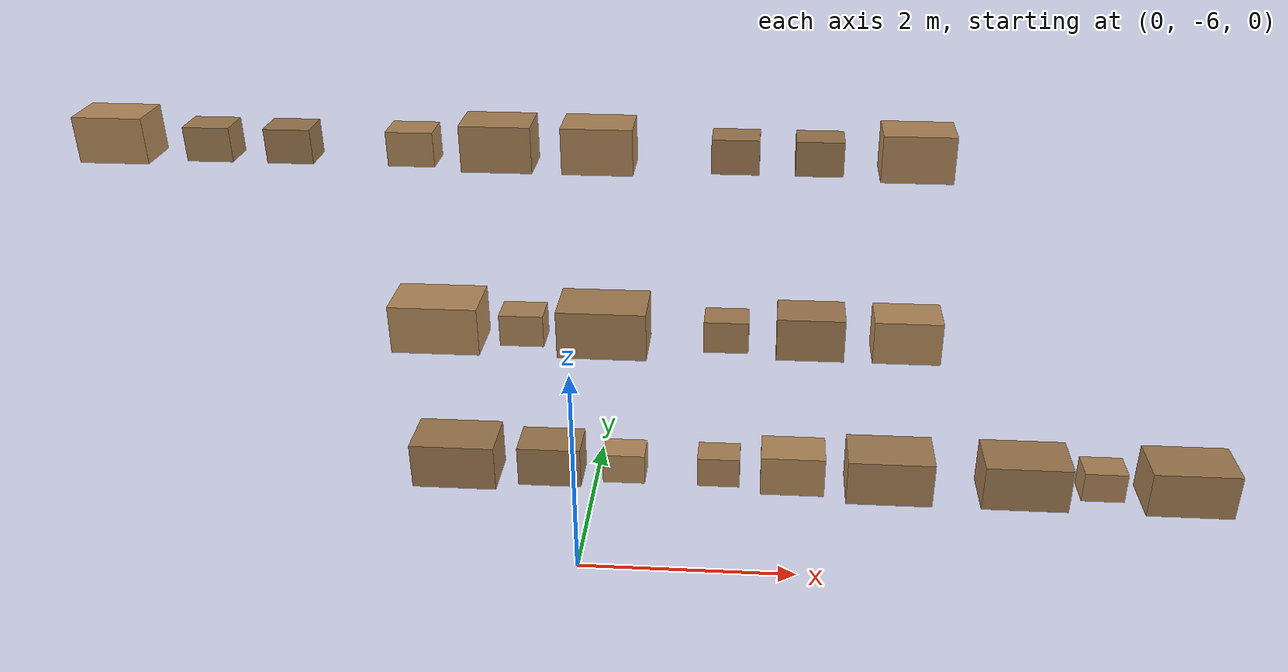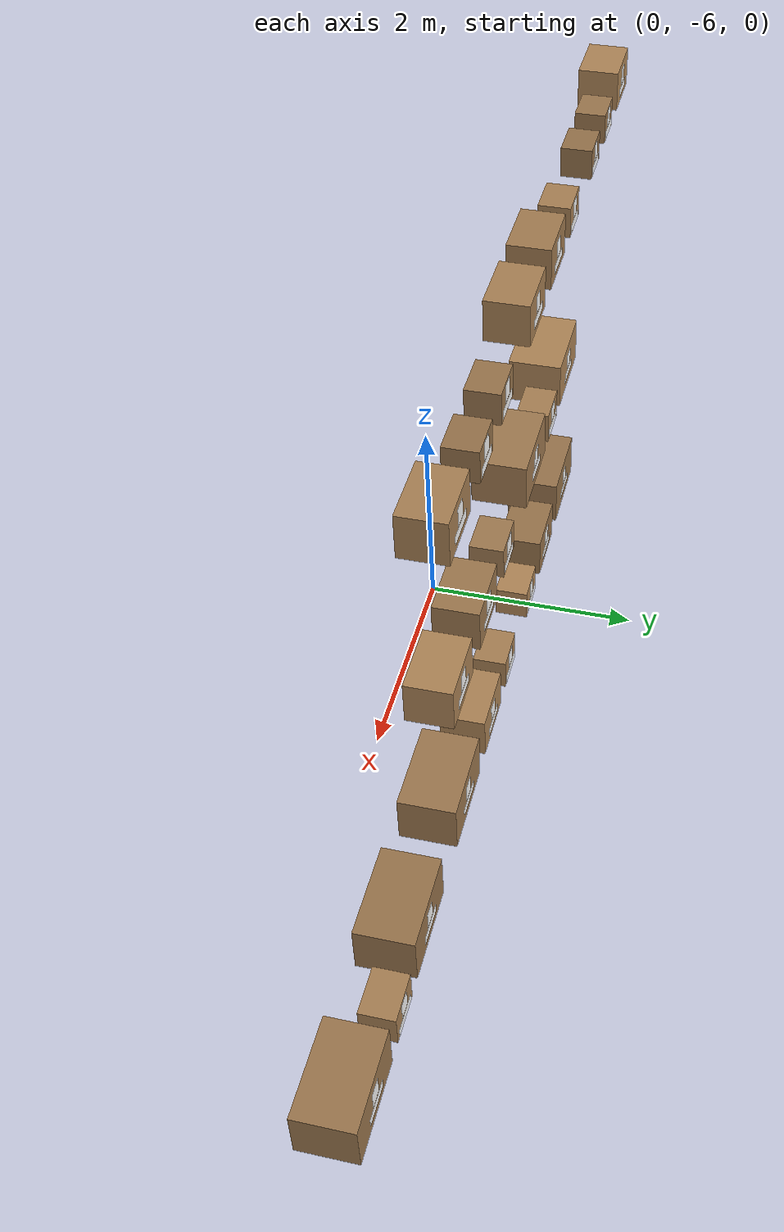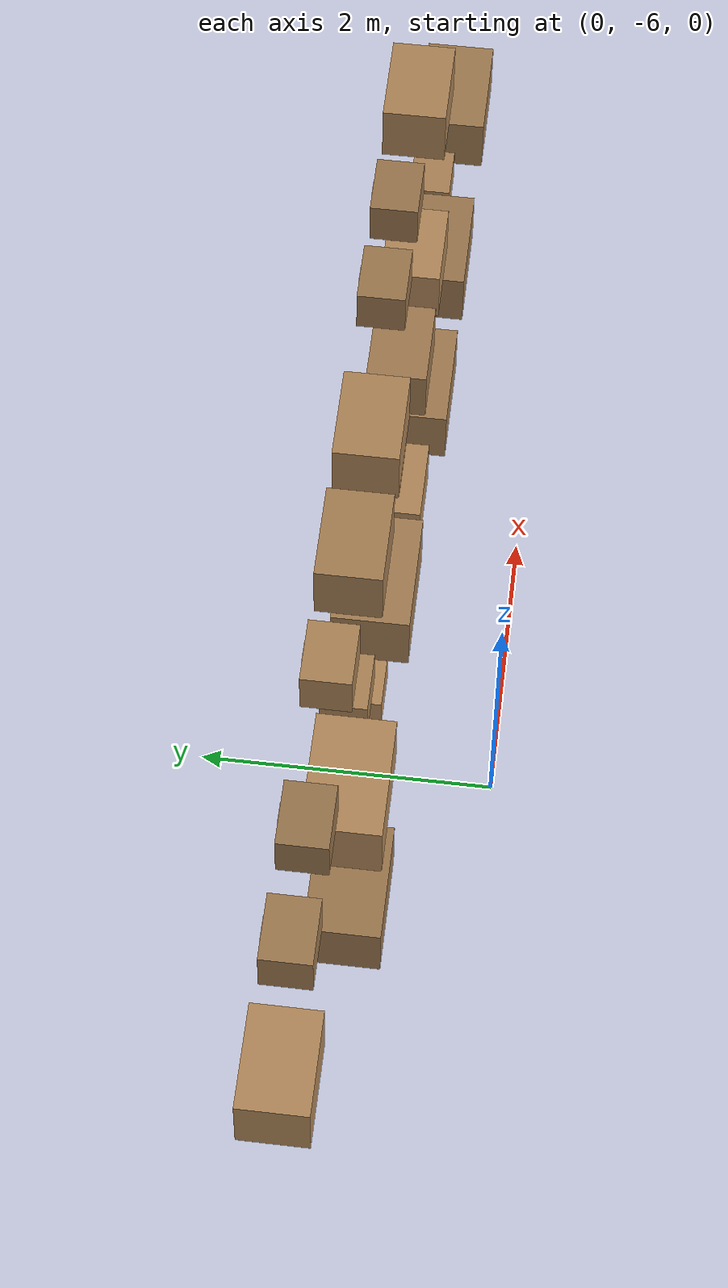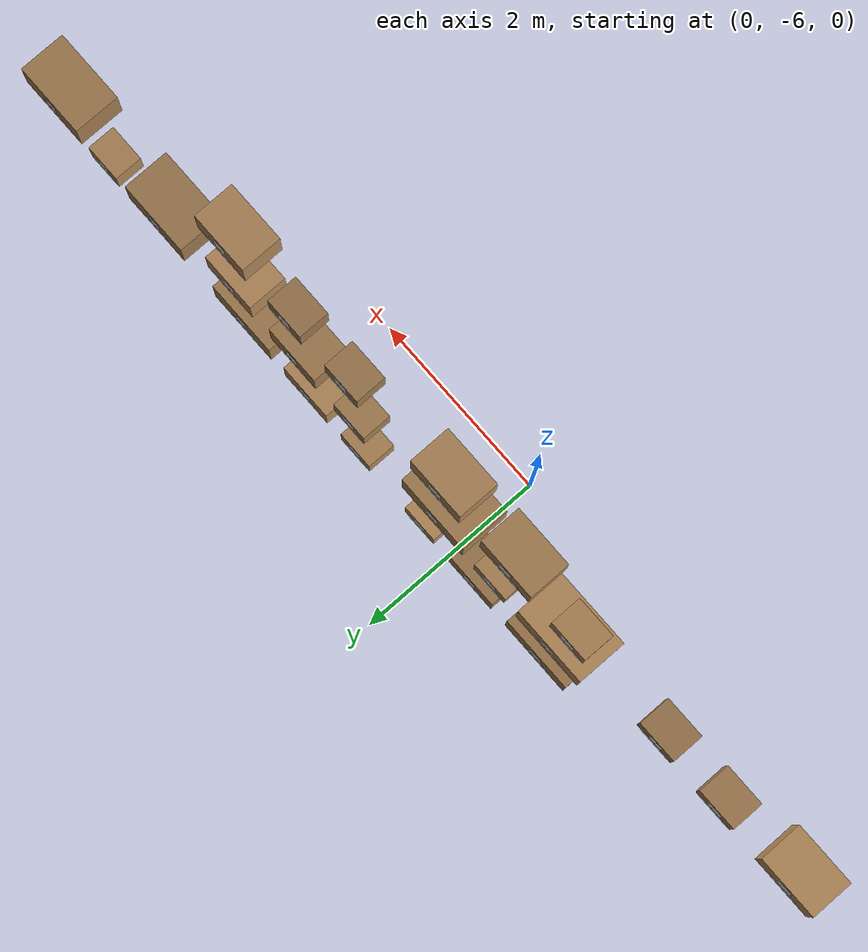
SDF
<sdf version="1.9">
 <world name="warehouse">
  <model name="inventory">
   <static>true</static>
   <link name="box_A_03_3_0">
    <visual name="body">
     <pose>-3.95 -5.12 3.75 0 0 0</pose>
     <geometry><box><size>0.6 0.4 0.4</size></box></geometry>
     <material>
      <ambient>0.350205 0.267804 0.175102 1</ambient>
      <diffuse>0.700409 0.535607 0.350205 1</diffuse>
      <specular>0.05 0.05 0.05 1</specular>
      <pbr><metal><metalness>0.0</metalness><roughness>0.9</roughness></metal></pbr>
     </material>
    </visual>
    <collision name="body_c">
     <pose>-3.95 -5.12 3.75 0 0 0</pose>
     <geometry><box><size>0.6 0.4 0.4</size></box></geometry>
    </collision>
    <visual name="label">
     <pose>-3.95 -4.916 3.8 1.5708 0 3.14159</pose>
     <geometry>
      <mesh><uri>model://warehouse_assets/meshes/label_quad.obj</uri><scale>0.14 0.17 1</scale></mesh>
     </geometry>
     <material>
      <ambient>1 1 1 1</ambient>
      <diffuse>1 1 1 1</diffuse>
      <specular>0 0 0 1</specular>
      <pbr>
       <metal>
        <albedo_map>model://warehouse_assets/materials/textures/box_A0330.png</albedo_map>
        <metalness>0.0</metalness>
        <roughness>1.0</roughness>
       </metal>
      </pbr>
     </material>
    </visual>
    <visual name="placard">
     <pose>-3.95 -4.916 3.66 1.5708 0 3.14159</pose>
     <geometry>
      <mesh><uri>model://warehouse_assets/meshes/label_quad.obj</uri><scale>0.32 0.09 1</scale></mesh>
     </geometry>
     <material>
      <ambient>1 1 1 1</ambient>
      <diffuse>1 1 1 1</diffuse>
      <specular>0 0 0 1</specular>
      <pbr>
       <metal>
        <albedo_map>model://warehouse_assets/materials/textures/placard_A0330.png</albedo_map>
        <metalness>0.0</metalness>
        <roughness>1.0</roughness>
       </metal>
      </pbr>
     </material>
    </visual>
   </link>
   <link name="box_A_03_3_1">
    <visual name="body">
     <pose>-3.15 -5.07 3.7 0 0 0</pose>
     <geometry><box><size>0.4 0.3 0.3</size></box></geometry>
     <material>
      <ambient>0.311586 0.238272 0.155793 1</ambient>
      <diffuse>0.623172 0.476543 0.311586 1</diffuse>
      <specular>0.05 0.05 0.05 1</specular>
      <pbr><metal><metalness>0.0</metalness><roughness>0.9</roughness></metal></pbr>
     </material>
    </visual>
    <collision name="body_c">
     <pose>-3.15 -5.07 3.7 0 0 0</pose>
     <geometry><box><size>0.4 0.3 0.3</size></box></geometry>
    </collision>
    <visual name="label">
     <pose>-3.15 -4.916 3.75 1.5708 0 3.14159</pose>
     <geometry>
      <mesh><uri>model://warehouse_assets/meshes/label_quad.obj</uri><scale>0.14 0.17 1</scale></mesh>
     </geometry>
     <material>
      <ambient>1 1 1 1</ambient>
      <diffuse>1 1 1 1</diffuse>
      <specular>0 0 0 1</specular>
      <pbr>
       <metal>
        <albedo_map>model://warehouse_assets/materials/textures/box_A0331.png</albedo_map>
        <metalness>0.0</metalness>
        <roughness>1.0</roughness>
       </metal>
      </pbr>
     </material>
    </visual>
    <visual name="placard">
     <pose>-3.15 -4.916 3.61 1.5708 0 3.14159</pose>
     <geometry>
      <mesh><uri>model://warehouse_assets/meshes/label_quad.obj</uri><scale>0.32 0.09 1</scale></mesh>
     </geometry>
     <material>
      <ambient>1 1 1 1</ambient>
      <diffuse>1 1 1 1</diffuse>
      <specular>0 0 0 1</specular>
      <pbr>
       <metal>
        <albedo_map>model://warehouse_assets/materials/textures/placard_A0331.png</albedo_map>
        <metalness>0.0</metalness>
        <roughness>1.0</roughness>
       </metal>
      </pbr>
     </material>
    </visual>
   </link>
   <link name="box_A_03_3_2">
    <visual name="body">
     <pose>-2.45 -5.07 3.7 0 0 0</pose>
     <geometry><box><size>0.4 0.3 0.3</size></box></geometry>
     <material>
      <ambient>0.299243 0.228833 0.149621 1</ambient>
      <diffuse>0.598485 0.457665 0.299243 1</diffuse>
      <specular>0.05 0.05 0.05 1</specular>
      <pbr><metal><metalness>0.0</metalness><roughness>0.9</roughness></metal></pbr>
     </material>
    </visual>
    <collision name="body_c">
     <pose>-2.45 -5.07 3.7 0 0 0</pose>
     <geometry><box><size>0.4 0.3 0.3</size></box></geometry>
    </collision>
    <visual name="label">
     <pose>-2.45 -4.916 3.75 1.5708 0 3.14159</pose>
     <geometry>
      <mesh><uri>model://warehouse_assets/meshes/label_quad.obj</uri><scale>0.14 0.17 1</scale></mesh>
     </geometry>
     <material>
      <ambient>1 1 1 1</ambient>
      <diffuse>1 1 1 1</diffuse>
      <specular>0 0 0 1</specular>
      <pbr>
       <metal>
        <albedo_map>model://warehouse_assets/materials/textures/box_A0332.png</albedo_map>
        <metalness>0.0</metalness>
        <roughness>1.0</roughness>
       </metal>
      </pbr>
     </material>
    </visual>
    <visual name="placard">
     <pose>-2.45 -4.916 3.61 1.5708 0 3.14159</pose>
     <geometry>
      <mesh><uri>model://warehouse_assets/meshes/label_quad.obj</uri><scale>0.32 0.09 1</scale></mesh>
     </geometry>
     <material>
      <ambient>1 1 1 1</ambient>
      <diffuse>1 1 1 1</diffuse>
      <specular>0 0 0 1</specular>
      <pbr>
       <metal>
        <albedo_map>model://warehouse_assets/materials/textures/placard_A0332.png</albedo_map>
        <metalness>0.0</metalness>
        <roughness>1.0</roughness>
       </metal>
      </pbr>
     </material>
    </visual>
   </link>
   <link name="box_A_04_1_0">
    <visual name="body">
     <pose>-1.25 -5.17 0.625 0 0 0</pose>
     <geometry><box><size>0.8 0.5 0.45</size></box></geometry>
     <material>
      <ambient>0.306747 0.234571 0.153373 1</ambient>
      <diffuse>0.613494 0.469142 0.306747 1</diffuse>
      <specular>0.05 0.05 0.05 1</specular>
      <pbr><metal><metalness>0.0</metalness><roughness>0.9</roughness></metal></pbr>
     </material>
    </visual>
    <collision name="body_c">
     <pose>-1.25 -5.17 0.625 0 0 0</pose>
     <geometry><box><size>0.8 0.5 0.45</size></box></geometry>
    </collision>
    <visual name="label">
     <pose>-1.25 -4.916 0.675 1.5708 0 3.14159</pose>
     <geometry>
      <mesh><uri>model://warehouse_assets/meshes/label_quad.obj</uri><scale>0.14 0.17 1</scale></mesh>
     </geometry>
     <material>
      <ambient>1 1 1 1</ambient>
      <diffuse>1 1 1 1</diffuse>
      <specular>0 0 0 1</specular>
      <pbr>
       <metal>
        <albedo_map>model://warehouse_assets/materials/textures/box_A0410.png</albedo_map>
        <metalness>0.0</metalness>
        <roughness>1.0</roughness>
       </metal>
      </pbr>
     </material>
    </visual>
    <visual name="placard">
     <pose>-1.25 -4.916 0.535 1.5708 0 3.14159</pose>
     <geometry>
      <mesh><uri>model://warehouse_assets/meshes/label_quad.obj</uri><scale>0.32 0.09 1</scale></mesh>
     </geometry>
     <material>
      <ambient>1 1 1 1</ambient>
      <diffuse>1 1 1 1</diffuse>
      <specular>0 0 0 1</specular>
      <pbr>
       <metal>
        <albedo_map>model://warehouse_assets/materials/textures/placard_A0410.png</albedo_map>
        <metalness>0.0</metalness>
        <roughness>1.0</roughness>
       </metal>
      </pbr>
     </material>
    </visual>
   </link>
   <link name="box_A_04_1_1">
    <visual name="body">
     <pose>-0.35 -5.12 0.6 0 0 0</pose>
     <geometry><box><size>0.6 0.4 0.4</size></box></geometry>
     <material>
      <ambient>0.304688 0.232997 0.152344 1</ambient>
      <diffuse>0.609377 0.465994 0.304688 1</diffuse>
      <specular>0.05 0.05 0.05 1</specular>
      <pbr><metal><metalness>0.0</metalness><roughness>0.9</roughness></metal></pbr>
     </material>
    </visual>
    <collision name="body_c">
     <pose>-0.35 -5.12 0.6 0 0 0</pose>
     <geometry><box><size>0.6 0.4 0.4</size></box></geometry>
    </collision>
    <visual name="label">
     <pose>-0.35 -4.916 0.65 1.5708 0 3.14159</pose>
     <geometry>
      <mesh><uri>model://warehouse_assets/meshes/label_quad.obj</uri><scale>0.14 0.17 1</scale></mesh>
     </geometry>
     <material>
      <ambient>1 1 1 1</ambient>
      <diffuse>1 1 1 1</diffuse>
      <specular>0 0 0 1</specular>
      <pbr>
       <metal>
        <albedo_map>model://warehouse_assets/materials/textures/box_A0411.png</albedo_map>
        <metalness>0.0</metalness>
        <roughness>1.0</roughness>
       </metal>
      </pbr>
     </material>
    </visual>
    <visual name="placard">
     <pose>-0.35 -4.916 0.51 1.5708 0 3.14159</pose>
     <geometry>
      <mesh><uri>model://warehouse_assets/meshes/label_quad.obj</uri><scale>0.32 0.09 1</scale></mesh>
     </geometry>
     <material>
      <ambient>1 1 1 1</ambient>
      <diffuse>1 1 1 1</diffuse>
      <specular>0 0 0 1</specular>
      <pbr>
       <metal>
        <albedo_map>model://warehouse_assets/materials/textures/placard_A0411.png</albedo_map>
        <metalness>0.0</metalness>
        <roughness>1.0</roughness>
       </metal>
      </pbr>
     </material>
    </visual>
   </link>
   <link name="box_A_04_1_2">
    <visual name="body">
     <pose>0.35 -5.07 0.55 0 0 0</pose>
     <geometry><box><size>0.4 0.3 0.3</size></box></geometry>
     <material>
      <ambient>0.3539 0.27063 0.17695 1</ambient>
      <diffuse>0.707801 0.541259 0.3539 1</diffuse>
      <specular>0.05 0.05 0.05 1</specular>
      <pbr><metal><metalness>0.0</metalness><roughness>0.9</roughness></metal></pbr>
     </material>
    </visual>
    <collision name="body_c">
     <pose>0.35 -5.07 0.55 0 0 0</pose>
     <geometry><box><size>0.4 0.3 0.3</size></box></geometry>
    </collision>
    <visual name="label">
     <pose>0.35 -4.916 0.6 1.5708 0 3.14159</pose>
     <geometry>
      <mesh><uri>model://warehouse_assets/meshes/label_quad.obj</uri><scale>0.14 0.17 1</scale></mesh>
     </geometry>
     <material>
      <ambient>1 1 1 1</ambient>
      <diffuse>1 1 1 1</diffuse>
      <specular>0 0 0 1</specular>
      <pbr>
       <metal>
        <albedo_map>model://warehouse_assets/materials/textures/box_A0412.png</albedo_map>
        <metalness>0.0</metalness>
        <roughness>1.0</roughness>
       </metal>
      </pbr>
     </material>
    </visual>
    <visual name="placard">
     <pose>0.35 -4.916 0.46 1.5708 0 3.14159</pose>
     <geometry>
      <mesh><uri>model://warehouse_assets/meshes/label_quad.obj</uri><scale>0.32 0.09 1</scale></mesh>
     </geometry>
     <material>
      <ambient>1 1 1 1</ambient>
      <diffuse>1 1 1 1</diffuse>
      <specular>0 0 0 1</specular>
      <pbr>
       <metal>
        <albedo_map>model://warehouse_assets/materials/textures/placard_A0412.png</albedo_map>
        <metalness>0.0</metalness>
        <roughness>1.0</roughness>
       </metal>
      </pbr>
     </material>
    </visual>
   </link>
   <link name="box_A_04_2_0">
    <visual name="body">
     <pose>-1.3 -5.17 2.075 0 0 0</pose>
     <geometry><box><size>0.8 0.5 0.45</size></box></geometry>
     <material>
      <ambient>0.349316 0.267124 0.174658 1</ambient>
      <diffuse>0.698632 0.534248 0.349316 1</diffuse>
      <specular>0.05 0.05 0.05 1</specular>
      <pbr><metal><metalness>0.0</metalness><roughness>0.9</roughness></metal></pbr>
     </material>
    </visual>
    <collision name="body_c">
     <pose>-1.3 -5.17 2.075 0 0 0</pose>
     <geometry><box><size>0.8 0.5 0.45</size></box></geometry>
    </collision>
    <visual name="label">
     <pose>-1.3 -4.916 2.125 1.5708 0 3.14159</pose>
     <geometry>
      <mesh><uri>model://warehouse_assets/meshes/label_quad.obj</uri><scale>0.14 0.17 1</scale></mesh>
     </geometry>
     <material>
      <ambient>1 1 1 1</ambient>
      <diffuse>1 1 1 1</diffuse>
      <specular>0 0 0 1</specular>
      <pbr>
       <metal>
        <albedo_map>model://warehouse_assets/materials/textures/box_A0420.png</albedo_map>
        <metalness>0.0</metalness>
        <roughness>1.0</roughness>
       </metal>
      </pbr>
     </material>
    </visual>
    <visual name="placard">
     <pose>-1.3 -4.916 1.985 1.5708 0 3.14159</pose>
     <geometry>
      <mesh><uri>model://warehouse_assets/meshes/label_quad.obj</uri><scale>0.32 0.09 1</scale></mesh>
     </geometry>
     <material>
      <ambient>1 1 1 1</ambient>
      <diffuse>1 1 1 1</diffuse>
      <specular>0 0 0 1</specular>
      <pbr>
       <metal>
        <albedo_map>model://warehouse_assets/materials/textures/placard_A0420.png</albedo_map>
        <metalness>0.0</metalness>
        <roughness>1.0</roughness>
       </metal>
      </pbr>
     </material>
    </visual>
   </link>
   <link name="box_A_04_2_1">
    <visual name="body">
     <pose>-0.55 -5.07 2 0 0 0</pose>
     <geometry><box><size>0.4 0.3 0.3</size></box></geometry>
     <material>
      <ambient>0.336579 0.257384 0.168289 1</ambient>
      <diffuse>0.673157 0.514767 0.336579 1</diffuse>
      <specular>0.05 0.05 0.05 1</specular>
      <pbr><metal><metalness>0.0</metalness><roughness>0.9</roughness></metal></pbr>
     </material>
    </visual>
    <collision name="body_c">
     <pose>-0.55 -5.07 2 0 0 0</pose>
     <geometry><box><size>0.4 0.3 0.3</size></box></geometry>
    </collision>
    <visual name="label">
     <pose>-0.55 -4.916 2.05 1.5708 0 3.14159</pose>
     <geometry>
      <mesh><uri>model://warehouse_assets/meshes/label_quad.obj</uri><scale>0.14 0.17 1</scale></mesh>
     </geometry>
     <material>
      <ambient>1 1 1 1</ambient>
      <diffuse>1 1 1 1</diffuse>
      <specular>0 0 0 1</specular>
      <pbr>
       <metal>
        <albedo_map>model://warehouse_assets/materials/textures/box_A0421.png</albedo_map>
        <metalness>0.0</metalness>
        <roughness>1.0</roughness>
       </metal>
      </pbr>
     </material>
    </visual>
    <visual name="placard">
     <pose>-0.55 -4.916 1.91 1.5708 0 3.14159</pose>
     <geometry>
      <mesh><uri>model://warehouse_assets/meshes/label_quad.obj</uri><scale>0.32 0.09 1</scale></mesh>
     </geometry>
     <material>
      <ambient>1 1 1 1</ambient>
      <diffuse>1 1 1 1</diffuse>
      <specular>0 0 0 1</specular>
      <pbr>
       <metal>
        <albedo_map>model://warehouse_assets/materials/textures/placard_A0421.png</albedo_map>
        <metalness>0.0</metalness>
        <roughness>1.0</roughness>
       </metal>
      </pbr>
     </material>
    </visual>
   </link>
   <link name="box_A_04_2_2">
    <visual name="body">
     <pose>0.2 -5.17 2.075 0 0 0</pose>
     <geometry><box><size>0.8 0.5 0.45</size></box></geometry>
     <material>
      <ambient>0.321122 0.245564 0.160561 1</ambient>
      <diffuse>0.642245 0.491128 0.321122 1</diffuse>
      <specular>0.05 0.05 0.05 1</specular>
      <pbr><metal><metalness>0.0</metalness><roughness>0.9</roughness></metal></pbr>
     </material>
    </visual>
    <collision name="body_c">
     <pose>0.2 -5.17 2.075 0 0 0</pose>
     <geometry><box><size>0.8 0.5 0.45</size></box></geometry>
    </collision>
    <visual name="label">
     <pose>0.2 -4.916 2.125 1.5708 0 3.14159</pose>
     <geometry>
      <mesh><uri>model://warehouse_assets/meshes/label_quad.obj</uri><scale>0.14 0.17 1</scale></mesh>
     </geometry>
     <material>
      <ambient>1 1 1 1</ambient>
      <diffuse>1 1 1 1</diffuse>
      <specular>0 0 0 1</specular>
      <pbr>
       <metal>
        <albedo_map>model://warehouse_assets/materials/textures/box_A0422.png</albedo_map>
        <metalness>0.0</metalness>
        <roughness>1.0</roughness>
       </metal>
      </pbr>
     </material>
    </visual>
    <visual name="placard">
     <pose>0.2 -4.916 1.985 1.5708 0 3.14159</pose>
     <geometry>
      <mesh><uri>model://warehouse_assets/meshes/label_quad.obj</uri><scale>0.32 0.09 1</scale></mesh>
     </geometry>
     <material>
      <ambient>1 1 1 1</ambient>
      <diffuse>1 1 1 1</diffuse>
      <specular>0 0 0 1</specular>
      <pbr>
       <metal>
        <albedo_map>model://warehouse_assets/materials/textures/placard_A0422.png</albedo_map>
        <metalness>0.0</metalness>
        <roughness>1.0</roughness>
       </metal>
      </pbr>
     </material>
    </visual>
   </link>
   <link name="box_A_04_3_0">
    <visual name="body">
     <pose>-1.4 -5.07 3.7 0 0 0</pose>
     <geometry><box><size>0.4 0.3 0.3</size></box></geometry>
     <material>
      <ambient>0.336707 0.257482 0.168354 1</ambient>
      <diffuse>0.673415 0.514964 0.336707 1</diffuse>
      <specular>0.05 0.05 0.05 1</specular>
      <pbr><metal><metalness>0.0</metalness><roughness>0.9</roughness></metal></pbr>
     </material>
    </visual>
    <collision name="body_c">
     <pose>-1.4 -5.07 3.7 0 0 0</pose>
     <geometry><box><size>0.4 0.3 0.3</size></box></geometry>
    </collision>
    <visual name="label">
     <pose>-1.4 -4.916 3.75 1.5708 0 3.14159</pose>
     <geometry>
      <mesh><uri>model://warehouse_assets/meshes/label_quad.obj</uri><scale>0.14 0.17 1</scale></mesh>
     </geometry>
     <material>
      <ambient>1 1 1 1</ambient>
      <diffuse>1 1 1 1</diffuse>
      <specular>0 0 0 1</specular>
      <pbr>
       <metal>
        <albedo_map>model://warehouse_assets/materials/textures/box_A0430.png</albedo_map>
        <metalness>0.0</metalness>
        <roughness>1.0</roughness>
       </metal>
      </pbr>
     </material>
    </visual>
    <visual name="placard">
     <pose>-1.4 -4.916 3.61 1.5708 0 3.14159</pose>
     <geometry>
      <mesh><uri>model://warehouse_assets/meshes/label_quad.obj</uri><scale>0.32 0.09 1</scale></mesh>
     </geometry>
     <material>
      <ambient>1 1 1 1</ambient>
      <diffuse>1 1 1 1</diffuse>
      <specular>0 0 0 1</specular>
      <pbr>
       <metal>
        <albedo_map>model://warehouse_assets/materials/textures/placard_A0430.png</albedo_map>
        <metalness>0.0</metalness>
        <roughness>1.0</roughness>
       </metal>
      </pbr>
     </material>
    </visual>
   </link>
   <link name="box_A_04_3_1">
    <visual name="body">
     <pose>-0.65 -5.12 3.75 0 0 0</pose>
     <geometry><box><size>0.6 0.4 0.4</size></box></geometry>
     <material>
      <ambient>0.324996 0.248526 0.162498 1</ambient>
      <diffuse>0.649991 0.497052 0.324996 1</diffuse>
      <specular>0.05 0.05 0.05 1</specular>
      <pbr><metal><metalness>0.0</metalness><roughness>0.9</roughness></metal></pbr>
     </material>
    </visual>
    <collision name="body_c">
     <pose>-0.65 -5.12 3.75 0 0 0</pose>
     <geometry><box><size>0.6 0.4 0.4</size></box></geometry>
    </collision>
    <visual name="label">
     <pose>-0.65 -4.916 3.8 1.5708 0 3.14159</pose>
     <geometry>
      <mesh><uri>model://warehouse_assets/meshes/label_quad.obj</uri><scale>0.14 0.17 1</scale></mesh>
     </geometry>
     <material>
      <ambient>1 1 1 1</ambient>
      <diffuse>1 1 1 1</diffuse>
      <specular>0 0 0 1</specular>
      <pbr>
       <metal>
        <albedo_map>model://warehouse_assets/materials/textures/box_A0431.png</albedo_map>
        <metalness>0.0</metalness>
        <roughness>1.0</roughness>
       </metal>
      </pbr>
     </material>
    </visual>
    <visual name="placard">
     <pose>-0.65 -4.916 3.66 1.5708 0 3.14159</pose>
     <geometry>
      <mesh><uri>model://warehouse_assets/meshes/label_quad.obj</uri><scale>0.32 0.09 1</scale></mesh>
     </geometry>
     <material>
      <ambient>1 1 1 1</ambient>
      <diffuse>1 1 1 1</diffuse>
      <specular>0 0 0 1</specular>
      <pbr>
       <metal>
        <albedo_map>model://warehouse_assets/materials/textures/placard_A0431.png</albedo_map>
        <metalness>0.0</metalness>
        <roughness>1.0</roughness>
       </metal>
      </pbr>
     </material>
    </visual>
   </link>
   <link name="box_A_04_3_2">
    <visual name="body">
     <pose>0.2 -5.12 3.75 0 0 0</pose>
     <geometry><box><size>0.6 0.4 0.4</size></box></geometry>
     <material>
      <ambient>0.33769 0.258233 0.168845 1</ambient>
      <diffuse>0.675379 0.516466 0.33769 1</diffuse>
      <specular>0.05 0.05 0.05 1</specular>
      <pbr><metal><metalness>0.0</metalness><roughness>0.9</roughness></metal></pbr>
     </material>
    </visual>
    <collision name="body_c">
     <pose>0.2 -5.12 3.75 0 0 0</pose>
     <geometry><box><size>0.6 0.4 0.4</size></box></geometry>
    </collision>
    <visual name="label">
     <pose>0.2 -4.916 3.8 1.5708 0 3.14159</pose>
     <geometry>
      <mesh><uri>model://warehouse_assets/meshes/label_quad.obj</uri><scale>0.14 0.17 1</scale></mesh>
     </geometry>
     <material>
      <ambient>1 1 1 1</ambient>
      <diffuse>1 1 1 1</diffuse>
      <specular>0 0 0 1</specular>
      <pbr>
       <metal>
        <albedo_map>model://warehouse_assets/materials/textures/box_A0432.png</albedo_map>
        <metalness>0.0</metalness>
        <roughness>1.0</roughness>
       </metal>
      </pbr>
     </material>
    </visual>
    <visual name="placard">
     <pose>0.2 -4.916 3.66 1.5708 0 3.14159</pose>
     <geometry>
      <mesh><uri>model://warehouse_assets/meshes/label_quad.obj</uri><scale>0.32 0.09 1</scale></mesh>
     </geometry>
     <material>
      <ambient>1 1 1 1</ambient>
      <diffuse>1 1 1 1</diffuse>
      <specular>0 0 0 1</specular>
      <pbr>
       <metal>
        <albedo_map>model://warehouse_assets/materials/textures/placard_A0432.png</albedo_map>
        <metalness>0.0</metalness>
        <roughness>1.0</roughness>
       </metal>
      </pbr>
     </material>
    </visual>
   </link>
   <link name="box_A_05_1_0">
    <visual name="body">
     <pose>1.25 -5.07 0.55 0 0 0</pose>
     <geometry><box><size>0.4 0.3 0.3</size></box></geometry>
     <material>
      <ambient>0.336385 0.257236 0.168193 1</ambient>
      <diffuse>0.672771 0.514472 0.336385 1</diffuse>
      <specular>0.05 0.05 0.05 1</specular>
      <pbr><metal><metalness>0.0</metalness><roughness>0.9</roughness></metal></pbr>
     </material>
    </visual>
    <collision name="body_c">
     <pose>1.25 -5.07 0.55 0 0 0</pose>
     <geometry><box><size>0.4 0.3 0.3</size></box></geometry>
    </collision>
    <visual name="label">
     <pose>1.25 -4.916 0.6 1.5708 0 3.14159</pose>
     <geometry>
      <mesh><uri>model://warehouse_assets/meshes/label_quad.obj</uri><scale>0.14 0.17 1</scale></mesh>
     </geometry>
     <material>
      <ambient>1 1 1 1</ambient>
      <diffuse>1 1 1 1</diffuse>
      <specular>0 0 0 1</specular>
      <pbr>
       <metal>
        <albedo_map>model://warehouse_assets/materials/textures/box_A0510.png</albedo_map>
        <metalness>0.0</metalness>
        <roughness>1.0</roughness>
       </metal>
      </pbr>
     </material>
    </visual>
    <visual name="placard">
     <pose>1.25 -4.916 0.46 1.5708 0 3.14159</pose>
     <geometry>
      <mesh><uri>model://warehouse_assets/meshes/label_quad.obj</uri><scale>0.32 0.09 1</scale></mesh>
     </geometry>
     <material>
      <ambient>1 1 1 1</ambient>
      <diffuse>1 1 1 1</diffuse>
      <specular>0 0 0 1</specular>
      <pbr>
       <metal>
        <albedo_map>model://warehouse_assets/materials/textures/placard_A0510.png</albedo_map>
        <metalness>0.0</metalness>
        <roughness>1.0</roughness>
       </metal>
      </pbr>
     </material>
    </visual>
   </link>
   <link name="box_A_05_1_1">
    <visual name="body">
     <pose>1.95 -5.12 0.6 0 0 0</pose>
     <geometry><box><size>0.6 0.4 0.4</size></box></geometry>
     <material>
      <ambient>0.347353 0.265623 0.173676 1</ambient>
      <diffuse>0.694706 0.531246 0.347353 1</diffuse>
      <specular>0.05 0.05 0.05 1</specular>
      <pbr><metal><metalness>0.0</metalness><roughness>0.9</roughness></metal></pbr>
     </material>
    </visual>
    <collision name="body_c">
     <pose>1.95 -5.12 0.6 0 0 0</pose>
     <geometry><box><size>0.6 0.4 0.4</size></box></geometry>
    </collision>
    <visual name="label">
     <pose>1.95 -4.916 0.65 1.5708 0 3.14159</pose>
     <geometry>
      <mesh><uri>model://warehouse_assets/meshes/label_quad.obj</uri><scale>0.14 0.17 1</scale></mesh>
     </geometry>
     <material>
      <ambient>1 1 1 1</ambient>
      <diffuse>1 1 1 1</diffuse>
      <specular>0 0 0 1</specular>
      <pbr>
       <metal>
        <albedo_map>model://warehouse_assets/materials/textures/box_A0511.png</albedo_map>
        <metalness>0.0</metalness>
        <roughness>1.0</roughness>
       </metal>
      </pbr>
     </material>
    </visual>
    <visual name="placard">
     <pose>1.95 -4.916 0.51 1.5708 0 3.14159</pose>
     <geometry>
      <mesh><uri>model://warehouse_assets/meshes/label_quad.obj</uri><scale>0.32 0.09 1</scale></mesh>
     </geometry>
     <material>
      <ambient>1 1 1 1</ambient>
      <diffuse>1 1 1 1</diffuse>
      <specular>0 0 0 1</specular>
      <pbr>
       <metal>
        <albedo_map>model://warehouse_assets/materials/textures/placard_A0511.png</albedo_map>
        <metalness>0.0</metalness>
        <roughness>1.0</roughness>
       </metal>
      </pbr>
     </material>
    </visual>
   </link>
   <link name="box_A_05_1_2">
    <visual name="body">
     <pose>2.85 -5.17 0.625 0 0 0</pose>
     <geometry><box><size>0.8 0.5 0.45</size></box></geometry>
     <material>
      <ambient>0.316167 0.241775 0.158083 1</ambient>
      <diffuse>0.632334 0.48355 0.316167 1</diffuse>
      <specular>0.05 0.05 0.05 1</specular>
      <pbr><metal><metalness>0.0</metalness><roughness>0.9</roughness></metal></pbr>
     </material>
    </visual>
    <collision name="body_c">
     <pose>2.85 -5.17 0.625 0 0 0</pose>
     <geometry><box><size>0.8 0.5 0.45</size></box></geometry>
    </collision>
    <visual name="label">
     <pose>2.85 -4.916 0.675 1.5708 0 3.14159</pose>
     <geometry>
      <mesh><uri>model://warehouse_assets/meshes/label_quad.obj</uri><scale>0.14 0.17 1</scale></mesh>
     </geometry>
     <material>
      <ambient>1 1 1 1</ambient>
      <diffuse>1 1 1 1</diffuse>
      <specular>0 0 0 1</specular>
      <pbr>
       <metal>
        <albedo_map>model://warehouse_assets/materials/textures/box_A0512.png</albedo_map>
        <metalness>0.0</metalness>
        <roughness>1.0</roughness>
       </metal>
      </pbr>
     </material>
    </visual>
    <visual name="placard">
     <pose>2.85 -4.916 0.535 1.5708 0 3.14159</pose>
     <geometry>
      <mesh><uri>model://warehouse_assets/meshes/label_quad.obj</uri><scale>0.32 0.09 1</scale></mesh>
     </geometry>
     <material>
      <ambient>1 1 1 1</ambient>
      <diffuse>1 1 1 1</diffuse>
      <specular>0 0 0 1</specular>
      <pbr>
       <metal>
        <albedo_map>model://warehouse_assets/materials/textures/placard_A0512.png</albedo_map>
        <metalness>0.0</metalness>
        <roughness>1.0</roughness>
       </metal>
      </pbr>
     </material>
    </visual>
   </link>
   <link name="box_A_05_2_0">
    <visual name="body">
     <pose>1.3 -5.07 2 0 0 0</pose>
     <geometry><box><size>0.4 0.3 0.3</size></box></geometry>
     <material>
      <ambient>0.32077 0.245295 0.160385 1</ambient>
      <diffuse>0.64154 0.490589 0.32077 1</diffuse>
      <specular>0.05 0.05 0.05 1</specular>
      <pbr><metal><metalness>0.0</metalness><roughness>0.9</roughness></metal></pbr>
     </material>
    </visual>
    <collision name="body_c">
     <pose>1.3 -5.07 2 0 0 0</pose>
     <geometry><box><size>0.4 0.3 0.3</size></box></geometry>
    </collision>
    <visual name="label">
     <pose>1.3 -4.916 2.05 1.5708 0 3.14159</pose>
     <geometry>
      <mesh><uri>model://warehouse_assets/meshes/label_quad.obj</uri><scale>0.14 0.17 1</scale></mesh>
     </geometry>
     <material>
      <ambient>1 1 1 1</ambient>
      <diffuse>1 1 1 1</diffuse>
      <specular>0 0 0 1</specular>
      <pbr>
       <metal>
        <albedo_map>model://warehouse_assets/materials/textures/box_A0520.png</albedo_map>
        <metalness>0.0</metalness>
        <roughness>1.0</roughness>
       </metal>
      </pbr>
     </material>
    </visual>
    <visual name="placard">
     <pose>1.3 -4.916 1.91 1.5708 0 3.14159</pose>
     <geometry>
      <mesh><uri>model://warehouse_assets/meshes/label_quad.obj</uri><scale>0.32 0.09 1</scale></mesh>
     </geometry>
     <material>
      <ambient>1 1 1 1</ambient>
      <diffuse>1 1 1 1</diffuse>
      <specular>0 0 0 1</specular>
      <pbr>
       <metal>
        <albedo_map>model://warehouse_assets/materials/textures/placard_A0520.png</albedo_map>
        <metalness>0.0</metalness>
        <roughness>1.0</roughness>
       </metal>
      </pbr>
     </material>
    </visual>
   </link>
   <link name="box_A_05_2_1">
    <visual name="body">
     <pose>2.05 -5.12 2.05 0 0 0</pose>
     <geometry><box><size>0.6 0.4 0.4</size></box></geometry>
     <material>
      <ambient>0.314392 0.240417 0.157196 1</ambient>
      <diffuse>0.628784 0.480835 0.314392 1</diffuse>
      <specular>0.05 0.05 0.05 1</specular>
      <pbr><metal><metalness>0.0</metalness><roughness>0.9</roughness></metal></pbr>
     </material>
    </visual>
    <collision name="body_c">
     <pose>2.05 -5.12 2.05 0 0 0</pose>
     <geometry><box><size>0.6 0.4 0.4</size></box></geometry>
    </collision>
    <visual name="label">
     <pose>2.05 -4.916 2.1 1.5708 0 3.14159</pose>
     <geometry>
      <mesh><uri>model://warehouse_assets/meshes/label_quad.obj</uri><scale>0.14 0.17 1</scale></mesh>
     </geometry>
     <material>
      <ambient>1 1 1 1</ambient>
      <diffuse>1 1 1 1</diffuse>
      <specular>0 0 0 1</specular>
      <pbr>
       <metal>
        <albedo_map>model://warehouse_assets/materials/textures/box_A0521.png</albedo_map>
        <metalness>0.0</metalness>
        <roughness>1.0</roughness>
       </metal>
      </pbr>
     </material>
    </visual>
    <visual name="placard">
     <pose>2.05 -4.916 1.96 1.5708 0 3.14159</pose>
     <geometry>
      <mesh><uri>model://warehouse_assets/meshes/label_quad.obj</uri><scale>0.32 0.09 1</scale></mesh>
     </geometry>
     <material>
      <ambient>1 1 1 1</ambient>
      <diffuse>1 1 1 1</diffuse>
      <specular>0 0 0 1</specular>
      <pbr>
       <metal>
        <albedo_map>model://warehouse_assets/materials/textures/placard_A0521.png</albedo_map>
        <metalness>0.0</metalness>
        <roughness>1.0</roughness>
       </metal>
      </pbr>
     </material>
    </visual>
   </link>
   <link name="box_A_05_2_2">
    <visual name="body">
     <pose>2.9 -5.12 2.05 0 0 0</pose>
     <geometry><box><size>0.6 0.4 0.4</size></box></geometry>
     <material>
      <ambient>0.349214 0.267046 0.174607 1</ambient>
      <diffuse>0.698429 0.534093 0.349214 1</diffuse>
      <specular>0.05 0.05 0.05 1</specular>
      <pbr><metal><metalness>0.0</metalness><roughness>0.9</roughness></metal></pbr>
     </material>
    </visual>
    <collision name="body_c">
     <pose>2.9 -5.12 2.05 0 0 0</pose>
     <geometry><box><size>0.6 0.4 0.4</size></box></geometry>
    </collision>
    <visual name="label">
     <pose>2.9 -4.916 2.1 1.5708 0 3.14159</pose>
     <geometry>
      <mesh><uri>model://warehouse_assets/meshes/label_quad.obj</uri><scale>0.14 0.17 1</scale></mesh>
     </geometry>
     <material>
      <ambient>1 1 1 1</ambient>
      <diffuse>1 1 1 1</diffuse>
      <specular>0 0 0 1</specular>
      <pbr>
       <metal>
        <albedo_map>model://warehouse_assets/materials/textures/box_A0522.png</albedo_map>
        <metalness>0.0</metalness>
        <roughness>1.0</roughness>
       </metal>
      </pbr>
     </material>
    </visual>
    <visual name="placard">
     <pose>2.9 -4.916 1.96 1.5708 0 3.14159</pose>
     <geometry>
      <mesh><uri>model://warehouse_assets/meshes/label_quad.obj</uri><scale>0.32 0.09 1</scale></mesh>
     </geometry>
     <material>
      <ambient>1 1 1 1</ambient>
      <diffuse>1 1 1 1</diffuse>
      <specular>0 0 0 1</specular>
      <pbr>
       <metal>
        <albedo_map>model://warehouse_assets/materials/textures/placard_A0522.png</albedo_map>
        <metalness>0.0</metalness>
        <roughness>1.0</roughness>
       </metal>
      </pbr>
     </material>
    </visual>
   </link>
   <link name="box_A_05_3_0">
    <visual name="body">
     <pose>1.35 -5.07 3.7 0 0 0</pose>
     <geometry><box><size>0.4 0.3 0.3</size></box></geometry>
     <material>
      <ambient>0.305822 0.233864 0.152911 1</ambient>
      <diffuse>0.611644 0.467728 0.305822 1</diffuse>
      <specular>0.05 0.05 0.05 1</specular>
      <pbr><metal><metalness>0.0</metalness><roughness>0.9</roughness></metal></pbr>
     </material>
    </visual>
    <collision name="body_c">
     <pose>1.35 -5.07 3.7 0 0 0</pose>
     <geometry><box><size>0.4 0.3 0.3</size></box></geometry>
    </collision>
    <visual name="label">
     <pose>1.35 -4.916 3.75 1.5708 0 3.14159</pose>
     <geometry>
      <mesh><uri>model://warehouse_assets/meshes/label_quad.obj</uri><scale>0.14 0.17 1</scale></mesh>
     </geometry>
     <material>
      <ambient>1 1 1 1</ambient>
      <diffuse>1 1 1 1</diffuse>
      <specular>0 0 0 1</specular>
      <pbr>
       <metal>
        <albedo_map>model://warehouse_assets/materials/textures/box_A0530.png</albedo_map>
        <metalness>0.0</metalness>
        <roughness>1.0</roughness>
       </metal>
      </pbr>
     </material>
    </visual>
    <visual name="placard">
     <pose>1.35 -4.916 3.61 1.5708 0 3.14159</pose>
     <geometry>
      <mesh><uri>model://warehouse_assets/meshes/label_quad.obj</uri><scale>0.32 0.09 1</scale></mesh>
     </geometry>
     <material>
      <ambient>1 1 1 1</ambient>
      <diffuse>1 1 1 1</diffuse>
      <specular>0 0 0 1</specular>
      <pbr>
       <metal>
        <albedo_map>model://warehouse_assets/materials/textures/placard_A0530.png</albedo_map>
        <metalness>0.0</metalness>
        <roughness>1.0</roughness>
       </metal>
      </pbr>
     </material>
    </visual>
   </link>
   <link name="box_A_05_3_1">
    <visual name="body">
     <pose>2.05 -5.07 3.7 0 0 0</pose>
     <geometry><box><size>0.4 0.3 0.3</size></box></geometry>
     <material>
      <ambient>0.300526 0.229814 0.150263 1</ambient>
      <diffuse>0.601052 0.459628 0.300526 1</diffuse>
      <specular>0.05 0.05 0.05 1</specular>
      <pbr><metal><metalness>0.0</metalness><roughness>0.9</roughness></metal></pbr>
     </material>
    </visual>
    <collision name="body_c">
     <pose>2.05 -5.07 3.7 0 0 0</pose>
     <geometry><box><size>0.4 0.3 0.3</size></box></geometry>
    </collision>
    <visual name="label">
     <pose>2.05 -4.916 3.75 1.5708 0 3.14159</pose>
     <geometry>
      <mesh><uri>model://warehouse_assets/meshes/label_quad.obj</uri><scale>0.14 0.17 1</scale></mesh>
     </geometry>
     <material>
      <ambient>1 1 1 1</ambient>
      <diffuse>1 1 1 1</diffuse>
      <specular>0 0 0 1</specular>
      <pbr>
       <metal>
        <albedo_map>model://warehouse_assets/materials/textures/box_A0531.png</albedo_map>
        <metalness>0.0</metalness>
        <roughness>1.0</roughness>
       </metal>
      </pbr>
     </material>
    </visual>
    <visual name="placard">
     <pose>2.05 -4.916 3.61 1.5708 0 3.14159</pose>
     <geometry>
      <mesh><uri>model://warehouse_assets/meshes/label_quad.obj</uri><scale>0.32 0.09 1</scale></mesh>
     </geometry>
     <material>
      <ambient>1 1 1 1</ambient>
      <diffuse>1 1 1 1</diffuse>
      <specular>0 0 0 1</specular>
      <pbr>
       <metal>
        <albedo_map>model://warehouse_assets/materials/textures/placard_A0531.png</albedo_map>
        <metalness>0.0</metalness>
        <roughness>1.0</roughness>
       </metal>
      </pbr>
     </material>
    </visual>
   </link>
   <link name="box_A_05_3_2">
    <visual name="body">
     <pose>2.85 -5.12 3.75 0 0 0</pose>
     <geometry><box><size>0.6 0.4 0.4</size></box></geometry>
     <material>
      <ambient>0.337626 0.258185 0.168813 1</ambient>
      <diffuse>0.675253 0.51637 0.337626 1</diffuse>
      <specular>0.05 0.05 0.05 1</specular>
      <pbr><metal><metalness>0.0</metalness><roughness>0.9</roughness></metal></pbr>
     </material>
    </visual>
    <collision name="body_c">
     <pose>2.85 -5.12 3.75 0 0 0</pose>
     <geometry><box><size>0.6 0.4 0.4</size></box></geometry>
    </collision>
    <visual name="label">
     <pose>2.85 -4.916 3.8 1.5708 0 3.14159</pose>
     <geometry>
      <mesh><uri>model://warehouse_assets/meshes/label_quad.obj</uri><scale>0.14 0.17 1</scale></mesh>
     </geometry>
     <material>
      <ambient>1 1 1 1</ambient>
      <diffuse>1 1 1 1</diffuse>
      <specular>0 0 0 1</specular>
      <pbr>
       <metal>
        <albedo_map>model://warehouse_assets/materials/textures/box_A0532.png</albedo_map>
        <metalness>0.0</metalness>
        <roughness>1.0</roughness>
       </metal>
      </pbr>
     </material>
    </visual>
    <visual name="placard">
     <pose>2.85 -4.916 3.66 1.5708 0 3.14159</pose>
     <geometry>
      <mesh><uri>model://warehouse_assets/meshes/label_quad.obj</uri><scale>0.32 0.09 1</scale></mesh>
     </geometry>
     <material>
      <ambient>1 1 1 1</ambient>
      <diffuse>1 1 1 1</diffuse>
      <specular>0 0 0 1</specular>
      <pbr>
       <metal>
        <albedo_map>model://warehouse_assets/materials/textures/placard_A0532.png</albedo_map>
        <metalness>0.0</metalness>
        <roughness>1.0</roughness>
       </metal>
      </pbr>
     </material>
    </visual>
   </link>
   <link name="box_A_06_1_0">
    <visual name="body">
     <pose>4.1 -5.17 0.625 0 0 0</pose>
     <geometry><box><size>0.8 0.5 0.45</size></box></geometry>
     <material>
      <ambient>0.304988 0.233226 0.152494 1</ambient>
      <diffuse>0.609975 0.466452 0.304988 1</diffuse>
      <specular>0.05 0.05 0.05 1</specular>
      <pbr><metal><metalness>0.0</metalness><roughness>0.9</roughness></metal></pbr>
     </material>
    </visual>
    <collision name="body_c">
     <pose>4.1 -5.17 0.625 0 0 0</pose>
     <geometry><box><size>0.8 0.5 0.45</size></box></geometry>
    </collision>
    <visual name="label">
     <pose>4.1 -4.916 0.675 1.5708 0 3.14159</pose>
     <geometry>
      <mesh><uri>model://warehouse_assets/meshes/label_quad.obj</uri><scale>0.14 0.17 1</scale></mesh>
     </geometry>
     <material>
      <ambient>1 1 1 1</ambient>
      <diffuse>1 1 1 1</diffuse>
      <specular>0 0 0 1</specular>
      <pbr>
       <metal>
        <albedo_map>model://warehouse_assets/materials/textures/box_A0610.png</albedo_map>
        <metalness>0.0</metalness>
        <roughness>1.0</roughness>
       </metal>
      </pbr>
     </material>
    </visual>
    <visual name="placard">
     <pose>4.1 -4.916 0.535 1.5708 0 3.14159</pose>
     <geometry>
      <mesh><uri>model://warehouse_assets/meshes/label_quad.obj</uri><scale>0.32 0.09 1</scale></mesh>
     </geometry>
     <material>
      <ambient>1 1 1 1</ambient>
      <diffuse>1 1 1 1</diffuse>
      <specular>0 0 0 1</specular>
      <pbr>
       <metal>
        <albedo_map>model://warehouse_assets/materials/textures/placard_A0610.png</albedo_map>
        <metalness>0.0</metalness>
        <roughness>1.0</roughness>
       </metal>
      </pbr>
     </material>
    </visual>
   </link>
   <link name="box_A_06_1_1">
    <visual name="body">
     <pose>4.85 -5.07 0.55 0 0 0</pose>
     <geometry><box><size>0.4 0.3 0.3</size></box></geometry>
     <material>
      <ambient>0.335961 0.256912 0.167981 1</ambient>
      <diffuse>0.671923 0.513823 0.335961 1</diffuse>
      <specular>0.05 0.05 0.05 1</specular>
      <pbr><metal><metalness>0.0</metalness><roughness>0.9</roughness></metal></pbr>
     </material>
    </visual>
    <collision name="body_c">
     <pose>4.85 -5.07 0.55 0 0 0</pose>
     <geometry><box><size>0.4 0.3 0.3</size></box></geometry>
    </collision>
    <visual name="label">
     <pose>4.85 -4.916 0.6 1.5708 0 3.14159</pose>
     <geometry>
      <mesh><uri>model://warehouse_assets/meshes/label_quad.obj</uri><scale>0.14 0.17 1</scale></mesh>
     </geometry>
     <material>
      <ambient>1 1 1 1</ambient>
      <diffuse>1 1 1 1</diffuse>
      <specular>0 0 0 1</specular>
      <pbr>
       <metal>
        <albedo_map>model://warehouse_assets/materials/textures/box_A0611.png</albedo_map>
        <metalness>0.0</metalness>
        <roughness>1.0</roughness>
       </metal>
      </pbr>
     </material>
    </visual>
    <visual name="placard">
     <pose>4.85 -4.916 0.46 1.5708 0 3.14159</pose>
     <geometry>
      <mesh><uri>model://warehouse_assets/meshes/label_quad.obj</uri><scale>0.32 0.09 1</scale></mesh>
     </geometry>
     <material>
      <ambient>1 1 1 1</ambient>
      <diffuse>1 1 1 1</diffuse>
      <specular>0 0 0 1</specular>
      <pbr>
       <metal>
        <albedo_map>model://warehouse_assets/materials/textures/placard_A0611.png</albedo_map>
        <metalness>0.0</metalness>
        <roughness>1.0</roughness>
       </metal>
      </pbr>
     </material>
    </visual>
   </link>
   <link name="box_A_06_1_2">
    <visual name="body">
     <pose>5.6 -5.17 0.625 0 0 0</pose>
     <geometry><box><size>0.8 0.5 0.45</size></box></geometry>
     <material>
      <ambient>0.312328 0.238839 0.156164 1</ambient>
      <diffuse>0.624657 0.477679 0.312328 1</diffuse>
      <specular>0.05 0.05 0.05 1</specular>
      <pbr><metal><metalness>0.0</metalness><roughness>0.9</roughness></metal></pbr>
     </material>
    </visual>
    <collision name="body_c">
     <pose>5.6 -5.17 0.625 0 0 0</pose>
     <geometry><box><size>0.8 0.5 0.45</size></box></geometry>
    </collision>
    <visual name="label">
     <pose>5.6 -4.916 0.675 1.5708 0 3.14159</pose>
     <geometry>
      <mesh><uri>model://warehouse_assets/meshes/label_quad.obj</uri><scale>0.14 0.17 1</scale></mesh>
     </geometry>
     <material>
      <ambient>1 1 1 1</ambient>
      <diffuse>1 1 1 1</diffuse>
      <specular>0 0 0 1</specular>
      <pbr>
       <metal>
        <albedo_map>model://warehouse_assets/materials/textures/box_A0612.png</albedo_map>
        <metalness>0.0</metalness>
        <roughness>1.0</roughness>
       </metal>
      </pbr>
     </material>
    </visual>
    <visual name="placard">
     <pose>5.6 -4.916 0.535 1.5708 0 3.14159</pose>
     <geometry>
      <mesh><uri>model://warehouse_assets/meshes/label_quad.obj</uri><scale>0.32 0.09 1</scale></mesh>
     </geometry>
     <material>
      <ambient>1 1 1 1</ambient>
      <diffuse>1 1 1 1</diffuse>
      <specular>0 0 0 1</specular>
      <pbr>
       <metal>
        <albedo_map>model://warehouse_assets/materials/textures/placard_A0612.png</albedo_map>
        <metalness>0.0</metalness>
        <roughness>1.0</roughness>
       </metal>
      </pbr>
     </material>
    </visual>
   </link>
  </model>
 </world>
</sdf>
